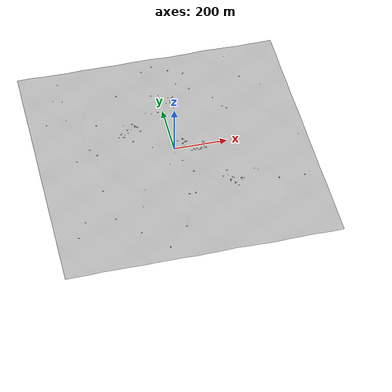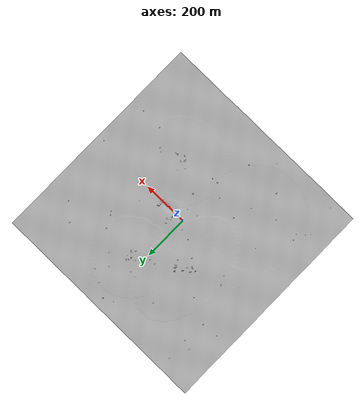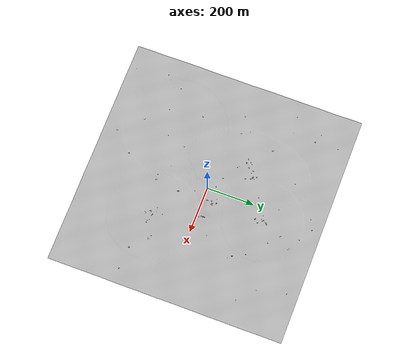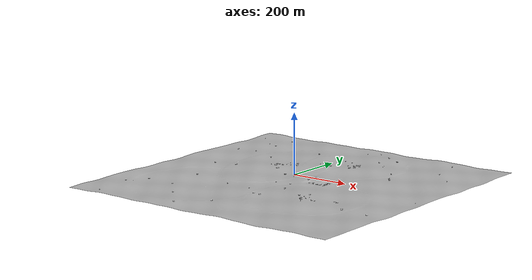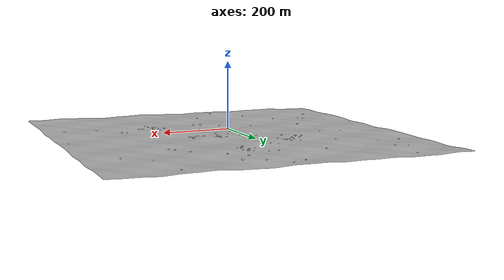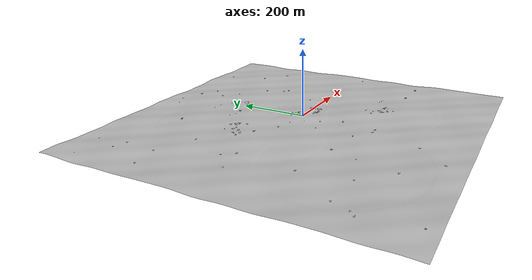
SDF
<?xml version="1.0" ?>
<sdf version="1.9">
  <model name="seafloor">
    <static>true</static>
    <link name="seafloor_link">
      <!-- High-Fidelity Photorealistic Visual Mesh (Zero Collision Overhead) -->
      <visual name="seafloor_visual">
        <pose>0 0 0 0 0 0</pose>
        <geometry>
          <mesh>
            <uri>model://seafloor/meshes/seafloor.obj</uri>
          </mesh>
        </geometry>
      </visual>
    </link>
  </model>
</sdf>
